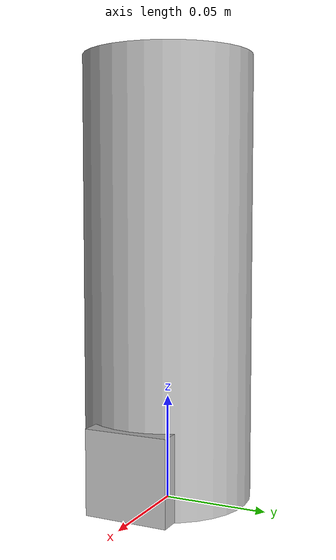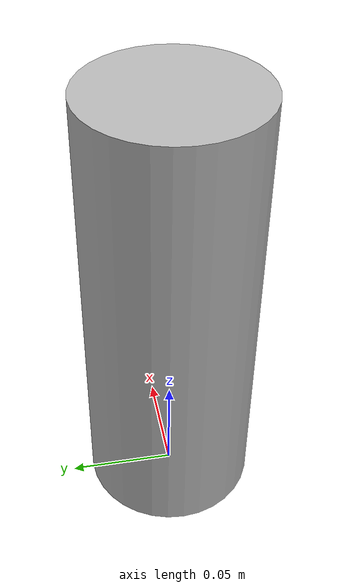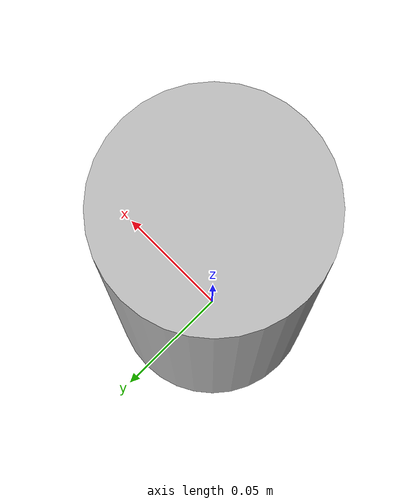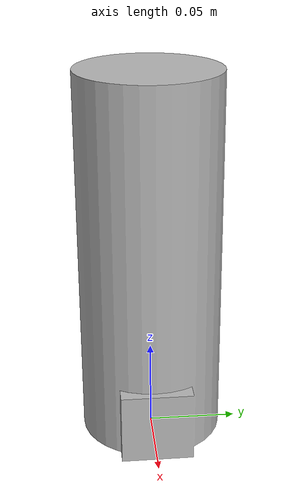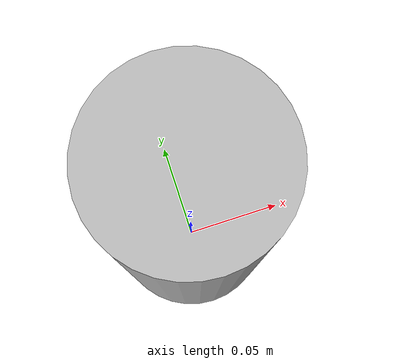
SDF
<?xml version='1.0'?>
<sdf version='1.6'>
  <!-- Model definition for a cuboid object -->
  <!-- Dimensions of the cuboid in meters (0.04m = 4cm) -->
  <model name='bottle'>

    <!-- Physics parameters -->
    <self_collide>0</self_collide>
    <enable_wind>0</enable_wind>
    <allow_auto_disable>0</allow_auto_disable>
    <kinematic>0</kinematic>
    <static>false</static>

    <link name="bottle_link">
      <!-- Visual of the cuboid -->
      <visual name="visual">
        <pose>0 0 0 0 0 0</pose> <!-- Rotate 180 degrees around y-axis -->
        <geometry>
          <mesh>
            <uri>model://bottle/meshes/bottle.dae</uri>
          </mesh>
        </geometry>

      </visual>
      <!-- Collision properties of the cuboid -->
      <collision name='collision'>
        <geometry>
          <mesh>
            <uri>model://bottle/meshes/bottle.stl</uri>
          </mesh>
        </geometry>
        <surface>
          <friction>
            <ode>
              <!-- Friction coefficients -->
              <mu>0.4</mu>
              <mu2>0.4</mu2>
              <slip1>0</slip1>
              <slip2>0</slip2>
            </ode>
          </friction>
          <contact>
            <ode>
              <!-- Soft Constraint Force Mixing -->
              <!-- Formula: soft_cfm = 1 / (Kp * simstep + Kd)  0.005 -->
              <soft_cfm>0.0005</soft_cfm>

              <!-- Soft Error Reduction Parameter -->
              <!-- Formula: soft_erp = (Kp * simstep) / (Kp * simstep + Kd)  0.5-->
              <soft_erp>0.5</soft_erp>

              <!-- Spring stiffness coefficient -->
              <kp>1000000.0</kp>

              <!-- Damping coefficient -->
              <kd>1000.0</kd>

              <!-- Maximum contact velocity -->
              <max_vel>0.1</max_vel>

              <!-- Minimum penetration depth -->
              <min_depth>0.001</min_depth>
            </ode>
          </contact>
        </surface>
        <max_contacts>10</max_contacts>
      </collision>

      <!-- Inertial properties of the cuboid -->
      <inertial>
        <!-- Mass of the cuboid in kilograms -->
        <mass>0.236</mass>
        <inertia>
          <!-- Inertia tensor components -->
          <ixx>0.0001</ixx>
          <iyy>0.0001</iyy>
          <izz>0.0001</izz>
          <ixy>0</ixy>
          <ixz>0</ixz>
          <iyz>0</iyz>
        </inertia>
        <pose>0 0 0 0 0 0</pose>
      </inertial>

    </link>

    <!-- Plugin configuration for the model -->
    <plugin name='p3d_base_controller' filename='libgazebo_ros_p3d.so'>
      <!-- Plugin always on -->
      <alwaysOn>1</alwaysOn>
      <!-- Update rate in Hz -->
      <updateRate>50.0</updateRate>
      <!-- Link name to which the plugin is attached -->
      <body_name>bottle_link</body_name>
      <!-- Topic name for odometry data -->
      <topicName>odom</topicName>
      <!-- Gaussian noise applied to the sensor data -->
      <gaussianNoise>0.01</gaussianNoise>
      <!-- Frame of reference for the plugin -->
      <frameName>world</frameName>
      <!-- XYZ offsets for the sensor data -->
      <xyzOffsets>0 0 0</xyzOffsets>
      <!-- Roll, pitch, yaw offsets for the sensor data -->
      <rpyOffsets>0 0 0</rpyOffsets>
    </plugin>

  </model>
</sdf>
